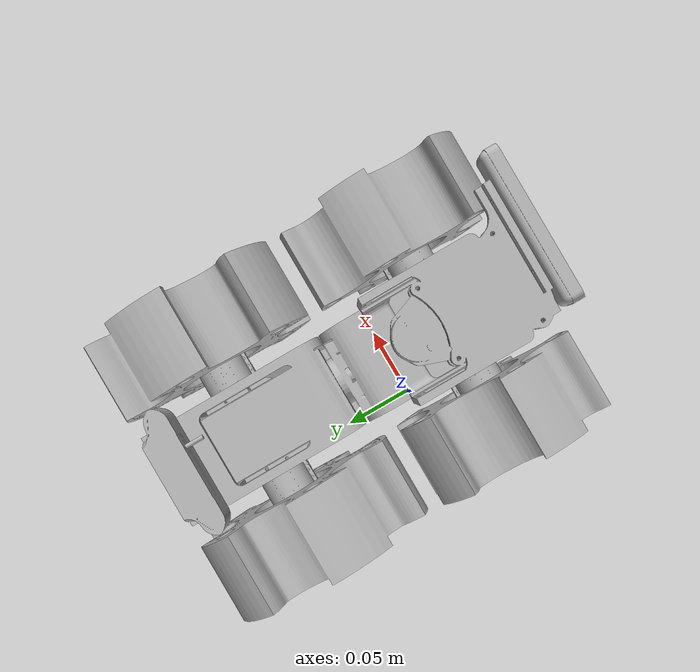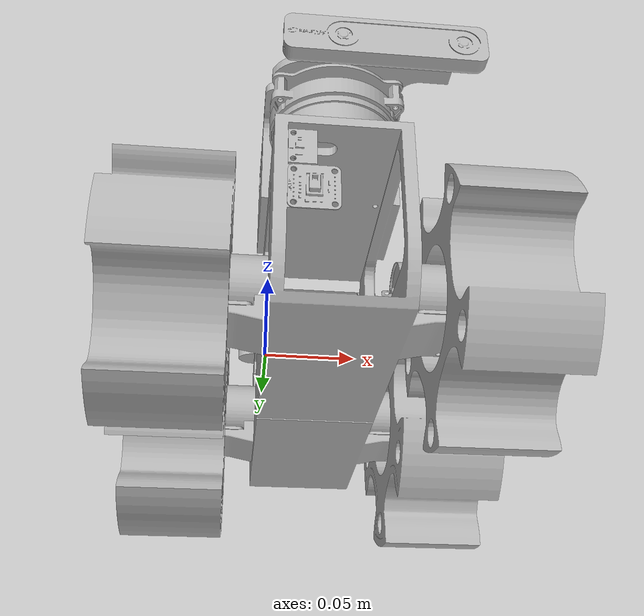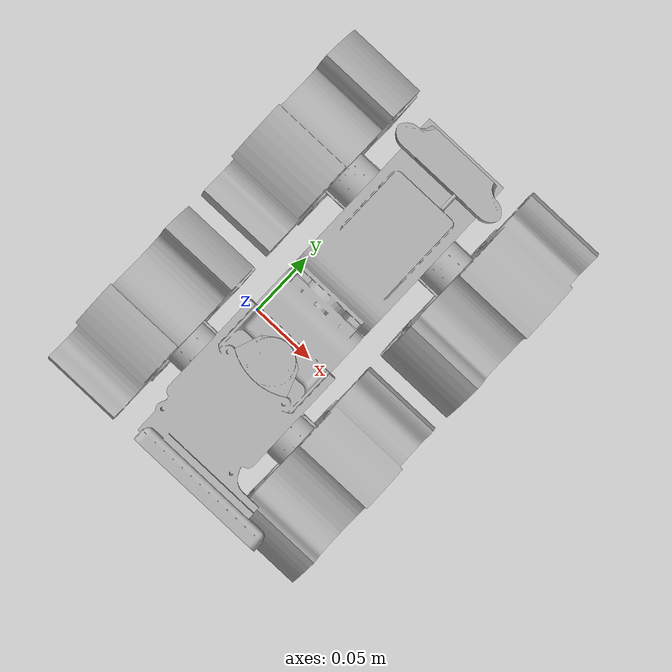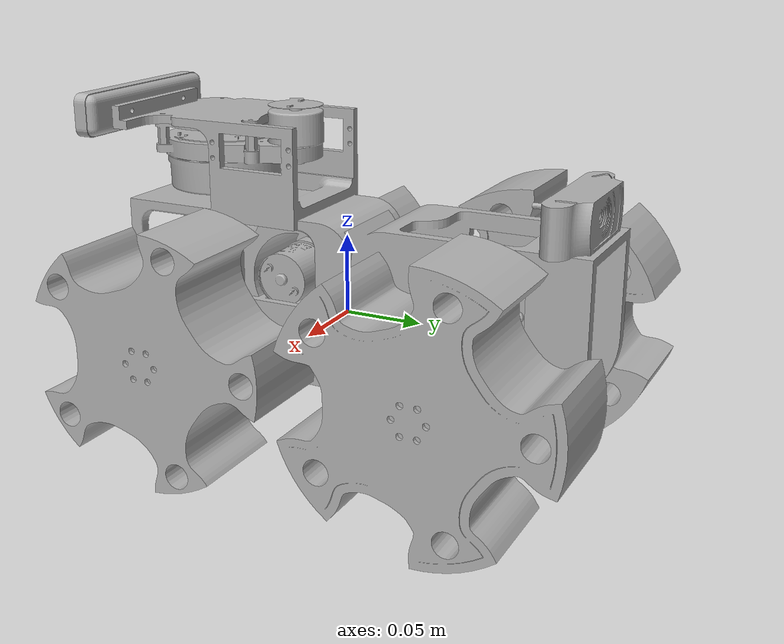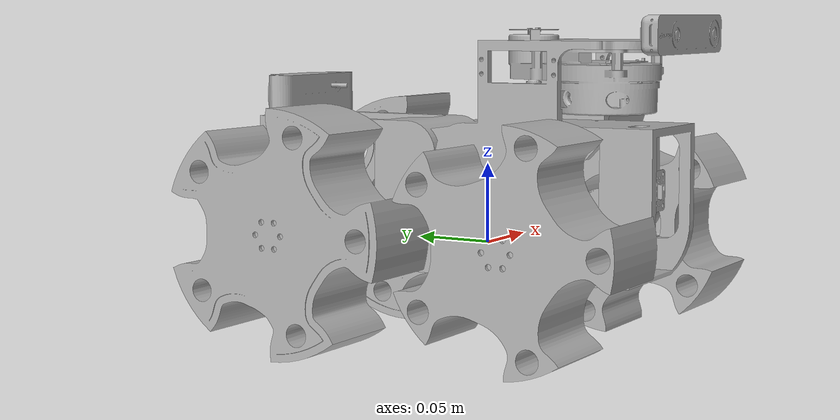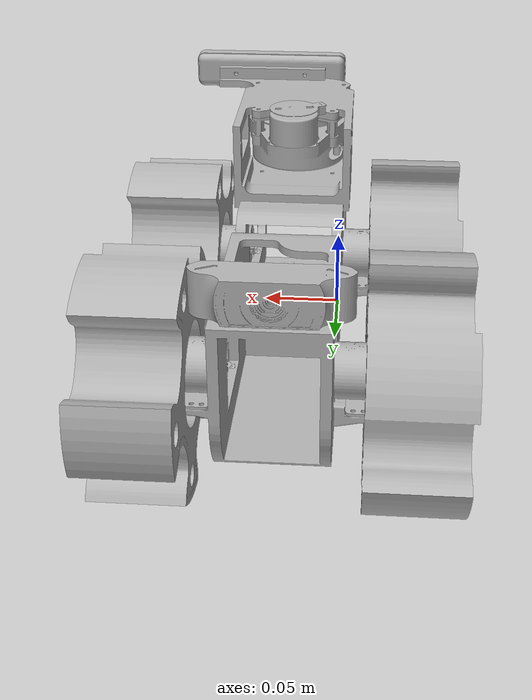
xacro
<?xml version="1.0" ?>
<robot name="redox_robot" xmlns:xacro="http://www.ros.org/wiki/xacro">

<xacro:include filename="$(find redox_robot_description)/urdf/materials.xacro" />
<xacro:include filename="$(find redox_robot_description)/urdf/redox_robot.trans" />
<xacro:include filename="$(find redox_robot_description)/urdf/redox_robot.gazebo" />
<link name="base_link">
  <inertial>
    <origin xyz="0.030018705409207293 0.02277308750672743 0.03005279524109006" rpy="0 0 0"/>
    <mass value="3.8831887887628076"/>
    <inertia ixx="0.032397" iyy="0.011887" izz="0.02869" ixy="-0.000377" iyz="0.003469" ixz="-1e-05"/>
  </inertial>
  <visual>
    <origin xyz="0 0 0" rpy="0 0 0"/>
    <geometry>
      <mesh filename="package://redox_robot_description/meshes/base_link.stl" scale="0.001 0.001 0.001"/>
    </geometry>
    <material name="silver"/>
  </visual>
  <collision>
    <origin xyz="0 0 0" rpy="0 0 0"/>
    <geometry>
      <mesh filename="package://redox_robot_description/meshes/base_link.stl" scale="0.001 0.001 0.001"/>
    </geometry>
  </collision>
</link>

<link name="wheel_3">
  <inertial>
    <origin xyz="0.02729659083369923 -0.0003579998502422632 -0.00014058126175340354" rpy="0 0 0"/>
    <mass value="4.750258601717646"/>
    <inertia ixx="0.014935" iyy="0.009074" izz="0.009066" ixy="2e-06" iyz="4e-06" ixz="1e-06"/>
  </inertial>
  <visual>
    <origin xyz="0.080654 -0.11181 -0.006293" rpy="0 0 0"/>
    <geometry>
      <mesh filename="package://redox_robot_description/meshes/wheel_3.stl" scale="0.001 0.001 0.001"/>
    </geometry>
    <material name="silver"/>
  </visual>
  <collision>
    <origin xyz="0.080654 -0.11181 -0.006293" rpy="0 0 0"/>
    <geometry>
      <mesh filename="package://redox_robot_description/meshes/wheel_3.stl" scale="0.001 0.001 0.001"/>
    </geometry>
  </collision>
</link>

<link name="wheel_2">
  <inertial>
    <origin xyz="-0.027296318412980913 0.0003572313203910604 -0.00014058126175261598" rpy="0 0 0"/>
    <mass value="4.750258601717646"/>
    <inertia ixx="0.014935" iyy="0.009074" izz="0.009066" ixy="2e-06" iyz="-4e-06" ixz="-1e-06"/>
  </inertial>
  <visual>
    <origin xyz="-0.144216 -0.111396 -0.006293" rpy="0 0 0"/>
    <geometry>
      <mesh filename="package://redox_robot_description/meshes/wheel_2.stl" scale="0.001 0.001 0.001"/>
    </geometry>
    <material name="silver"/>
  </visual>
  <collision>
    <origin xyz="-0.144216 -0.111396 -0.006293" rpy="0 0 0"/>
    <geometry>
      <mesh filename="package://redox_robot_description/meshes/wheel_2.stl" scale="0.001 0.001 0.001"/>
    </geometry>
  </collision>
</link>

<link name="wheel_4">
  <inertial>
    <origin xyz="0.027296590833699196 -0.00035799985024231873 -0.00014058126175339226" rpy="0 0 0"/>
    <mass value="4.750258601717646"/>
    <inertia ixx="0.014935" iyy="0.009074" izz="0.009066" ixy="2e-06" iyz="4e-06" ixz="1e-06"/>
  </inertial>
  <visual>
    <origin xyz="0.080654 0.04959 -0.006293" rpy="0 0 0"/>
    <geometry>
      <mesh filename="package://redox_robot_description/meshes/wheel_4.stl" scale="0.001 0.001 0.001"/>
    </geometry>
    <material name="silver"/>
  </visual>
  <collision>
    <origin xyz="0.080654 0.04959 -0.006293" rpy="0 0 0"/>
    <geometry>
      <mesh filename="package://redox_robot_description/meshes/wheel_4.stl" scale="0.001 0.001 0.001"/>
    </geometry>
  </collision>
</link>

<link name="wheel_1">
  <inertial>
    <origin xyz="-0.027296318412980844 0.0003572313203910882 -0.0001405812617526125" rpy="0 0 0"/>
    <mass value="4.750258601717646"/>
    <inertia ixx="0.014935" iyy="0.009074" izz="0.009066" ixy="2e-06" iyz="-4e-06" ixz="-1e-06"/>
  </inertial>
  <visual>
    <origin xyz="-0.144216 0.050004 -0.006293" rpy="0 0 0"/>
    <geometry>
      <mesh filename="package://redox_robot_description/meshes/wheel_1.stl" scale="0.001 0.001 0.001"/>
    </geometry>
    <material name="silver"/>
  </visual>
  <collision>
    <origin xyz="-0.144216 0.050004 -0.006293" rpy="0 0 0"/>
    <geometry>
      <mesh filename="package://redox_robot_description/meshes/wheel_1.stl" scale="0.001 0.001 0.001"/>
    </geometry>
  </collision>
</link>

<link name="gas_sensor_1">
  <inertial>
    <origin xyz="0.004746672182731395 -0.0008000921306509645 -0.007921901743374184" rpy="0 0 0"/>
    <mass value="0.003460388744762866"/>
    <inertia ixx="0.0" iyy="0.0" izz="0.0" ixy="-0.0" iyz="-0.0" ixz="-0.0"/>
  </inertial>
  <visual>
    <origin xyz="-0.006734 0.107777 -0.067433" rpy="0 0 0"/>
    <geometry>
      <mesh filename="package://redox_robot_description/meshes/gas_sensor_1.stl" scale="0.001 0.001 0.001"/>
    </geometry>
    <material name="silver"/>
  </visual>
  <collision>
    <origin xyz="-0.006734 0.107777 -0.067433" rpy="0 0 0"/>
    <geometry>
      <mesh filename="package://redox_robot_description/meshes/gas_sensor_1.stl" scale="0.001 0.001 0.001"/>
    </geometry>
  </collision>
</link>

<link name="base_scan_1">
  <inertial>
    <origin xyz="-0.000781 0.088274 -0.123077" rpy="0 0 0"/>
    <mass value="0.0"/>
    <inertia ixx="0.0" iyy="0.0" izz="0.0" ixy="0.0" iyz="0.0" ixz="0.0"/>
  </inertial>
  <visual>
    <origin xyz="-0.000781 0.088274 -0.123077" rpy="0 0 0"/>
    <geometry>
      <mesh filename="package://redox_robot_description/meshes/base_scan_1.stl" scale="0.001 0.001 0.001"/>
    </geometry>
    <material name="silver"/>
  </visual>
  <collision>
    <origin xyz="-0.000781 0.088274 -0.123077" rpy="0 0 0"/>
    <geometry>
      <mesh filename="package://redox_robot_description/meshes/base_scan_1.stl" scale="0.001 0.001 0.001"/>
    </geometry>
  </collision>

</link>

<link name="realsense_t265_1">
  <inertial>
    <origin xyz="-0.024754295060534712 -0.006117361074135616 -1.7589246570359762e-07" rpy="0 0 0"/>
    <mass value="0.22482888211310204"/>
    <inertia ixx="1.3e-05" iyy="0.000224" izz="0.000216" ixy="0.0" iyz="-0.0" ixz="0.0"/>
  </inertial>
  <visual>
    <origin xyz="-0.079663 0.101969 -0.131791" rpy="0 0 0"/>
    <geometry>
      <mesh filename="package://redox_robot_description/meshes/realsense_t265_1.stl" scale="0.001 0.001 0.001"/>
    </geometry>
    <material name="silver"/>
  </visual>
  <collision>
    <origin xyz="-0.079663 0.101969 -0.131791" rpy="0 0 0"/>
    <geometry>
      <mesh filename="package://redox_robot_description/meshes/realsense_t265_1.stl" scale="0.001 0.001 0.001"/>
    </geometry>
  </collision>
</link>

<link name="hub_4">
  <inertial>
    <origin xyz="0.003113509900325759 -9.136762218298067e-05 -0.00015428718992915869" rpy="0 0 0"/>
    <mass value="0.02001967132782171"/>
    <inertia ixx="2e-06" iyy="1e-06" izz="1e-06" ixy="0.0" iyz="0.0" ixz="0.0"/>
  </inertial>
  <visual>
    <origin xyz="0.080654 0.04959 -0.006293" rpy="0 0 0"/>
    <geometry>
      <mesh filename="package://redox_robot_description/meshes/hub_4.stl" scale="0.001 0.001 0.001"/>
    </geometry>
    <material name="silver"/>
  </visual>
  <collision>
    <origin xyz="0.080654 0.04959 -0.006293" rpy="0 0 0"/>
    <geometry>
      <mesh filename="package://redox_robot_description/meshes/hub_4.stl" scale="0.001 0.001 0.001"/>
    </geometry>
  </collision>
</link>

<link name="hub_1">
  <inertial>
    <origin xyz="-0.003113237479607567 9.059909233208319e-05 -0.00015428718992845179" rpy="0 0 0"/>
    <mass value="0.02001967132782171"/>
    <inertia ixx="2e-06" iyy="1e-06" izz="1e-06" ixy="0.0" iyz="-0.0" ixz="-0.0"/>
  </inertial>
  <visual>
    <origin xyz="-0.144216 0.050004 -0.006293" rpy="0 0 0"/>
    <geometry>
      <mesh filename="package://redox_robot_description/meshes/hub_1.stl" scale="0.001 0.001 0.001"/>
    </geometry>
    <material name="silver"/>
  </visual>
  <collision>
    <origin xyz="-0.144216 0.050004 -0.006293" rpy="0 0 0"/>
    <geometry>
      <mesh filename="package://redox_robot_description/meshes/hub_1.stl" scale="0.001 0.001 0.001"/>
    </geometry>
  </collision>
</link>

<link name="hub_2">
  <inertial>
    <origin xyz="-0.00311323747960765 9.059909233206931e-05 -0.00015428718992844398" rpy="0 0 0"/>
    <mass value="0.02001967132782171"/>
    <inertia ixx="2e-06" iyy="1e-06" izz="1e-06" ixy="0.0" iyz="-0.0" ixz="-0.0"/>
  </inertial>
  <visual>
    <origin xyz="-0.144216 -0.111396 -0.006293" rpy="0 0 0"/>
    <geometry>
      <mesh filename="package://redox_robot_description/meshes/hub_2.stl" scale="0.001 0.001 0.001"/>
    </geometry>
    <material name="silver"/>
  </visual>
  <collision>
    <origin xyz="-0.144216 -0.111396 -0.006293" rpy="0 0 0"/>
    <geometry>
      <mesh filename="package://redox_robot_description/meshes/hub_2.stl" scale="0.001 0.001 0.001"/>
    </geometry>
  </collision>
</link>

<link name="hub_3">
  <inertial>
    <origin xyz="0.0031135099003257866 -9.13676221830223e-05 -0.00015428718992917343" rpy="0 0 0"/>
    <mass value="0.02001967132782171"/>
    <inertia ixx="2e-06" iyy="1e-06" izz="1e-06" ixy="0.0" iyz="0.0" ixz="0.0"/>
  </inertial>
  <visual>
    <origin xyz="0.080654 -0.11181 -0.006293" rpy="0 0 0"/>
    <geometry>
      <mesh filename="package://redox_robot_description/meshes/hub_3.stl" scale="0.001 0.001 0.001"/>
    </geometry>
    <material name="silver"/>
  </visual>
  <collision>
    <origin xyz="0.080654 -0.11181 -0.006293" rpy="0 0 0"/>
    <geometry>
      <mesh filename="package://redox_robot_description/meshes/hub_3.stl" scale="0.001 0.001 0.001"/>
    </geometry>
  </collision>
</link>

<link name="dcmotor_4">
  <inertial>
    <origin xyz="0.02690834299078937 0.007749476584377274 -0.013589835198918437" rpy="0 0 0"/>
    <mass value="0.4471801539290962"/>
    <inertia ixx="7.1e-05" iyy="0.000161" izz="0.00016" ixy="0.0" iyz="0.0" ixz="-2e-06"/>
  </inertial>
  <visual>
    <origin xyz="0.058654 0.05734 -0.026717" rpy="0 0 0"/>
    <geometry>
      <mesh filename="package://redox_robot_description/meshes/dcmotor_4.stl" scale="0.001 0.001 0.001"/>
    </geometry>
    <material name="silver"/>
  </visual>
  <collision>
    <origin xyz="0.058654 0.05734 -0.026717" rpy="0 0 0"/>
    <geometry>
      <mesh filename="package://redox_robot_description/meshes/dcmotor_4.stl" scale="0.001 0.001 0.001"/>
    </geometry>
  </collision>
</link>

<link name="dcmotor_1">
  <inertial>
    <origin xyz="-0.02690807057007101 0.007749754885771787 -0.013589835198917991" rpy="0 0 0"/>
    <mass value="0.4471801539290962"/>
    <inertia ixx="7.1e-05" iyy="0.000161" izz="0.00016" ixy="0.0" iyz="-0.0" ixz="2e-06"/>
  </inertial>
  <visual>
    <origin xyz="-0.122216 0.057754 -0.026717" rpy="0 0 0"/>
    <geometry>
      <mesh filename="package://redox_robot_description/meshes/dcmotor_1.stl" scale="0.001 0.001 0.001"/>
    </geometry>
    <material name="silver"/>
  </visual>
  <collision>
    <origin xyz="-0.122216 0.057754 -0.026717" rpy="0 0 0"/>
    <geometry>
      <mesh filename="package://redox_robot_description/meshes/dcmotor_1.stl" scale="0.001 0.001 0.001"/>
    </geometry>
  </collision>
</link>

<link name="dcmotor_2">
  <inertial>
    <origin xyz="-0.026908070570071024 0.007749754885771759 -0.01358983519891798" rpy="0 0 0"/>
    <mass value="0.4471801539290962"/>
    <inertia ixx="7.1e-05" iyy="0.000161" izz="0.00016" ixy="0.0" iyz="-0.0" ixz="2e-06"/>
  </inertial>
  <visual>
    <origin xyz="-0.122216 -0.103646 -0.026717" rpy="0 0 0"/>
    <geometry>
      <mesh filename="package://redox_robot_description/meshes/dcmotor_2.stl" scale="0.001 0.001 0.001"/>
    </geometry>
    <material name="silver"/>
  </visual>
  <collision>
    <origin xyz="-0.122216 -0.103646 -0.026717" rpy="0 0 0"/>
    <geometry>
      <mesh filename="package://redox_robot_description/meshes/dcmotor_2.stl" scale="0.001 0.001 0.001"/>
    </geometry>
  </collision>
</link>

<link name="dcmotor_3">
  <inertial>
    <origin xyz="0.026908342990789424 0.007749476584377177 -0.013589835198918434" rpy="0 0 0"/>
    <mass value="0.4471801539290962"/>
    <inertia ixx="7.1e-05" iyy="0.000161" izz="0.00016" ixy="0.0" iyz="0.0" ixz="-2e-06"/>
  </inertial>
  <visual>
    <origin xyz="0.058654 -0.10406 -0.026717" rpy="0 0 0"/>
    <geometry>
      <mesh filename="package://redox_robot_description/meshes/dcmotor_3.stl" scale="0.001 0.001 0.001"/>
    </geometry>
    <material name="silver"/>
  </visual>
  <collision>
    <origin xyz="0.058654 -0.10406 -0.026717" rpy="0 0 0"/>
    <geometry>
      <mesh filename="package://redox_robot_description/meshes/dcmotor_3.stl" scale="0.001 0.001 0.001"/>
    </geometry>
  </collision>
</link>

<link name="bracket_1">
  <inertial>
    <origin xyz="-0.002859767439332389 0.015615634272172767 0.006770355606271952" rpy="0 0 0"/>
    <mass value="0.04195982764049011"/>
    <inertia ixx="9e-06" iyy="1.6e-05" izz="1.7e-05" ixy="0.0" iyz="0.0" ixz="-4e-06"/>
  </inertial>
  <visual>
    <origin xyz="-0.109529 0.065621 0.007509" rpy="0 0 0"/>
    <geometry>
      <mesh filename="package://redox_robot_description/meshes/bracket_1.stl" scale="0.001 0.001 0.001"/>
    </geometry>
    <material name="silver"/>
  </visual>
  <collision>
    <origin xyz="-0.109529 0.065621 0.007509" rpy="0 0 0"/>
    <geometry>
      <mesh filename="package://redox_robot_description/meshes/bracket_1.stl" scale="0.001 0.001 0.001"/>
    </geometry>
  </collision>
</link>

<link name="bracket_2">
  <inertial>
    <origin xyz="-0.0028597674393324307 0.01561563427217276 0.006770355606271971" rpy="0 0 0"/>
    <mass value="0.04195982764049011"/>
    <inertia ixx="9e-06" iyy="1.6e-05" izz="1.7e-05" ixy="0.0" iyz="0.0" ixz="-4e-06"/>
  </inertial>
  <visual>
    <origin xyz="-0.109529 -0.095779 0.007509" rpy="0 0 0"/>
    <geometry>
      <mesh filename="package://redox_robot_description/meshes/bracket_2.stl" scale="0.001 0.001 0.001"/>
    </geometry>
    <material name="silver"/>
  </visual>
  <collision>
    <origin xyz="-0.109529 -0.095779 0.007509" rpy="0 0 0"/>
    <geometry>
      <mesh filename="package://redox_robot_description/meshes/bracket_2.stl" scale="0.001 0.001 0.001"/>
    </geometry>
  </collision>
</link>

<link name="bracket_4">
  <inertial>
    <origin xyz="0.002859039860050941 0.015626500151939553 0.006770355606271875" rpy="0 0 0"/>
    <mass value="0.04195982764049011"/>
    <inertia ixx="9e-06" iyy="1.6e-05" izz="1.7e-05" ixy="0.0" iyz="-0.0" ixz="4e-06"/>
  </inertial>
  <visual>
    <origin xyz="0.045966 0.065213 0.007509" rpy="0 0 0"/>
    <geometry>
      <mesh filename="package://redox_robot_description/meshes/bracket_4.stl" scale="0.001 0.001 0.001"/>
    </geometry>
    <material name="silver"/>
  </visual>
  <collision>
    <origin xyz="0.045966 0.065213 0.007509" rpy="0 0 0"/>
    <geometry>
      <mesh filename="package://redox_robot_description/meshes/bracket_4.stl" scale="0.001 0.001 0.001"/>
    </geometry>
  </collision>
</link>

<link name="bracket_3">
  <inertial>
    <origin xyz="0.002859039860050934 0.015626500151939504 0.006770355606271877" rpy="0 0 0"/>
    <mass value="0.04195982764049011"/>
    <inertia ixx="9e-06" iyy="1.6e-05" izz="1.7e-05" ixy="0.0" iyz="-0.0" ixz="4e-06"/>
  </inertial>
  <visual>
    <origin xyz="0.045966 -0.096187 0.007509" rpy="0 0 0"/>
    <geometry>
      <mesh filename="package://redox_robot_description/meshes/bracket_3.stl" scale="0.001 0.001 0.001"/>
    </geometry>
    <material name="silver"/>
  </visual>
  <collision>
    <origin xyz="0.045966 -0.096187 0.007509" rpy="0 0 0"/>
    <geometry>
      <mesh filename="package://redox_robot_description/meshes/bracket_3.stl" scale="0.001 0.001 0.001"/>
    </geometry>
  </collision>
</link>

<link name="back_camera_1">
  <inertial>
    <origin xyz="2.3451599559846936e-05 -0.0012721615487102378 0.013794968532879703" rpy="0 0 0"/>
    <mass value="0.3938340663114922"/>
    <inertia ixx="4.1e-05" iyy="0.000252" izz="0.000242" ixy="0.0" iyz="-0.0" ixz="-0.0"/>
  </inertial>
  <visual>
    <origin xyz="-0.031781 -0.159556 -0.075491" rpy="0 0 0"/>
    <geometry>
      <mesh filename="package://redox_robot_description/meshes/back_camera_1.stl" scale="0.001 0.001 0.001"/>
    </geometry>
    <material name="silver"/>
  </visual>
  <collision>
    <origin xyz="-0.031781 -0.159556 -0.075491" rpy="0 0 0"/>
    <geometry>
      <mesh filename="package://redox_robot_description/meshes/back_camera_1.stl" scale="0.001 0.001 0.001"/>
    </geometry>
  </collision>
</link>

<link name="thermal_camera_1">
  <inertial>
    <origin xyz="0.009852254547568662 -0.001102102803734406 -0.009785702572175273" rpy="0 0 0"/>
    <mass value="0.004996183093515437"/>
    <inertia ixx="0.0" iyy="0.0" izz="0.0" ixy="0.0" iyz="-0.0" ixz="-0.0"/>
  </inertial>
  <visual>
    <origin xyz="-0.007213 0.107777 -0.046041" rpy="0 0 0"/>
    <geometry>
      <mesh filename="package://redox_robot_description/meshes/thermal_camera_1.stl" scale="0.001 0.001 0.001"/>
    </geometry>
    <material name="silver"/>
  </visual>
  <collision>
    <origin xyz="-0.007213 0.107777 -0.046041" rpy="0 0 0"/>
    <geometry>
      <mesh filename="package://redox_robot_description/meshes/thermal_camera_1.stl" scale="0.001 0.001 0.001"/>
    </geometry>
  </collision>
</link>

<joint name="Rev1" type="continuous">
  <origin xyz="0.0 0.0 0.0" rpy="0 0 0"/>
  <parent link="hub_3"/>
  <child link="wheel_3"/>
  <axis xyz="1.0 -0.0 0.0"/>
</joint>

<joint name="Rev2" type="continuous">
  <origin xyz="0.0 0.0 0.0" rpy="0 0 0"/>
  <parent link="hub_2"/>
  <child link="wheel_2"/>
  <axis xyz="-1.0 -0.0 0.0"/>
</joint>

<joint name="Rev3" type="continuous">
  <origin xyz="0.0 0.0 0.0" rpy="0 0 0"/>
  <parent link="hub_4"/>
  <child link="wheel_4"/>
  <axis xyz="1.0 -0.0 0.0"/>
</joint>

<joint name="Rev4" type="continuous">
  <origin xyz="0.0 0.0 0.0" rpy="0 0 0"/>
  <parent link="hub_1"/>
  <child link="wheel_1"/>
  <axis xyz="-1.0 -0.0 0.0"/>
</joint>

<joint name="Rigid6" type="fixed">
  <origin xyz="0.006734 -0.107777 0.067433" rpy="0 0 0"/>
  <parent link="base_link"/>
  <child link="gas_sensor_1"/>
</joint>

<joint name="Rigid7" type="fixed">
  <origin xyz="0.000781 -0.088274 0.123077" rpy="0 0 0"/>
  <parent link="base_link"/>
  <child link="base_scan_1"/>
</joint>

<joint name="Rigid8" type="fixed">
  <origin xyz="0.079663 -0.101969 0.131791" rpy="0 0 0"/>
  <parent link="base_link"/>
  <child link="realsense_t265_1"/>
</joint>

<joint name="Rigid9" type="fixed">
  <origin xyz="-0.022 0.00775 -0.020424" rpy="0 0 0"/>
  <parent link="dcmotor_4"/>
  <child link="hub_4"/>
</joint>

<joint name="Rigid10" type="fixed">
  <origin xyz="0.022 0.00775 -0.020424" rpy="0 0 0"/>
  <parent link="dcmotor_1"/>
  <child link="hub_1"/>
</joint>

<joint name="Rigid11" type="fixed">
  <origin xyz="0.022 0.00775 -0.020424" rpy="0 0 0"/>
  <parent link="dcmotor_2"/>
  <child link="hub_2"/>
</joint>

<joint name="Rigid12" type="fixed">
  <origin xyz="-0.022 0.00775 -0.020424" rpy="0 0 0"/>
  <parent link="dcmotor_3"/>
  <child link="hub_3"/>
</joint>

<joint name="Rigid13" type="fixed">
  <origin xyz="-0.012688 0.007873 0.034226" rpy="0 0 0"/>
  <parent link="bracket_4"/>
  <child link="dcmotor_4"/>
</joint>

<joint name="Rigid14" type="fixed">
  <origin xyz="0.012687 0.007867 0.034226" rpy="0 0 0"/>
  <parent link="bracket_1"/>
  <child link="dcmotor_1"/>
</joint>

<joint name="Rigid15" type="fixed">
  <origin xyz="0.012687 0.007867 0.034226" rpy="0 0 0"/>
  <parent link="bracket_2"/>
  <child link="dcmotor_2"/>
</joint>

<joint name="Rigid16" type="fixed">
  <origin xyz="-0.012688 0.007873 0.034226" rpy="0 0 0"/>
  <parent link="bracket_3"/>
  <child link="dcmotor_3"/>
</joint>

<joint name="Rigid17" type="fixed">
  <origin xyz="0.109529 -0.065621 -0.007509" rpy="0 0 0"/>
  <parent link="base_link"/>
  <child link="bracket_1"/>
</joint>

<joint name="Rigid18" type="fixed">
  <origin xyz="0.109529 0.095779 -0.007509" rpy="0 0 0"/>
  <parent link="base_link"/>
  <child link="bracket_2"/>
</joint>

<joint name="Rigid19" type="fixed">
  <origin xyz="-0.045966 -0.065213 -0.007509" rpy="0 0 0"/>
  <parent link="base_link"/>
  <child link="bracket_4"/>
</joint>

<joint name="Rigid20" type="fixed">
  <origin xyz="-0.045966 0.096187 -0.007509" rpy="0 0 0"/>
  <parent link="base_link"/>
  <child link="bracket_3"/>
</joint>

<joint name="Rigid21" type="fixed">
  <origin xyz="0.031781 0.159556 0.075491" rpy="0 0 0"/>
  <parent link="base_link"/>
  <child link="back_camera_1"/>
</joint>

<joint name="Rigid22" type="fixed">
  <origin xyz="0.007213 -0.107777 0.046041" rpy="0 0 0"/>
  <parent link="base_link"/>
  <child link="thermal_camera_1"/>
</joint>

</robot>

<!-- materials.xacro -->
<robot name="redox_robot" xmlns:xacro="http://www.ros.org/wiki/xacro" >

<material name="silver">
  <color rgba="0.700 0.700 0.700 1.000"/>
</material>

</robot>

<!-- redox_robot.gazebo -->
<robot name="redox_robot" xmlns:xacro="http://www.ros.org/wiki/xacro" >

<xacro:property name="body_color" value="Gazebo/Silver" />

<gazebo>
  <plugin name="control" filename="libgazebo_ros_control.so"/>
</gazebo>
<gazebo reference="base_link">
  <material>${body_color}</material>
  <mu1>0.2</mu1>
  <mu2>0.2</mu2>
  <selfCollide>true</selfCollide>
  <gravity>true</gravity>
</gazebo>

<gazebo reference="wheel_3">
  <material>${body_color}</material>
  <mu1>0.2</mu1>
  <mu2>0.2</mu2>
  <selfCollide>true</selfCollide>
</gazebo>

<gazebo reference="wheel_2">
  <material>${body_color}</material>
  <mu1>0.2</mu1>
  <mu2>0.2</mu2>
  <selfCollide>true</selfCollide>
</gazebo>

<gazebo reference="wheel_4">
  <material>${body_color}</material>
  <mu1>0.2</mu1>
  <mu2>0.2</mu2>
  <selfCollide>true</selfCollide>
</gazebo>

<gazebo reference="wheel_1">
  <material>${body_color}</material>
  <mu1>0.2</mu1>
  <mu2>0.2</mu2>
  <selfCollide>true</selfCollide>
</gazebo>

<gazebo reference="gas_sensor_1">
  <material>${body_color}</material>
  <mu1>0.2</mu1>
  <mu2>0.2</mu2>
  <selfCollide>true</selfCollide>
</gazebo>

<gazebo reference="base_scan_1">
  <material>${body_color}</material>
  <mu1>0.2</mu1>
  <mu2>0.2</mu2>
  <selfCollide>true</selfCollide>
</gazebo>

<gazebo reference="realsense_t265_1">
  <material>${body_color}</material>
  <mu1>0.2</mu1>
  <mu2>0.2</mu2>
  <selfCollide>true</selfCollide>
</gazebo>

<gazebo reference="hub_4">
  <material>${body_color}</material>
  <mu1>0.2</mu1>
  <mu2>0.2</mu2>
  <selfCollide>true</selfCollide>
</gazebo>

<gazebo reference="hub_1">
  <material>${body_color}</material>
  <mu1>0.2</mu1>
  <mu2>0.2</mu2>
  <selfCollide>true</selfCollide>
</gazebo>

<gazebo reference="hub_2">
  <material>${body_color}</material>
  <mu1>0.2</mu1>
  <mu2>0.2</mu2>
  <selfCollide>true</selfCollide>
</gazebo>

<gazebo reference="hub_3">
  <material>${body_color}</material>
  <mu1>0.2</mu1>
  <mu2>0.2</mu2>
  <selfCollide>true</selfCollide>
</gazebo>

<gazebo reference="dcmotor_4">
  <material>${body_color}</material>
  <mu1>0.2</mu1>
  <mu2>0.2</mu2>
  <selfCollide>true</selfCollide>
</gazebo>

<gazebo reference="dcmotor_1">
  <material>${body_color}</material>
  <mu1>0.2</mu1>
  <mu2>0.2</mu2>
  <selfCollide>true</selfCollide>
</gazebo>

<gazebo reference="dcmotor_2">
  <material>${body_color}</material>
  <mu1>0.2</mu1>
  <mu2>0.2</mu2>
  <selfCollide>true</selfCollide>
</gazebo>

<gazebo reference="dcmotor_3">
  <material>${body_color}</material>
  <mu1>0.2</mu1>
  <mu2>0.2</mu2>
  <selfCollide>true</selfCollide>
</gazebo>

<gazebo reference="bracket_1">
  <material>${body_color}</material>
  <mu1>0.2</mu1>
  <mu2>0.2</mu2>
  <selfCollide>true</selfCollide>
</gazebo>

<gazebo reference="bracket_2">
  <material>${body_color}</material>
  <mu1>0.2</mu1>
  <mu2>0.2</mu2>
  <selfCollide>true</selfCollide>
</gazebo>

<gazebo reference="bracket_4">
  <material>${body_color}</material>
  <mu1>0.2</mu1>
  <mu2>0.2</mu2>
  <selfCollide>true</selfCollide>
</gazebo>

<gazebo reference="bracket_3">
  <material>${body_color}</material>
  <mu1>0.2</mu1>
  <mu2>0.2</mu2>
  <selfCollide>true</selfCollide>
</gazebo>

<gazebo reference="back_camera_1">
  <material>${body_color}</material>
  <mu1>0.2</mu1>
  <mu2>0.2</mu2>
  <selfCollide>true</selfCollide>
</gazebo>

<gazebo reference="thermal_camera_1">
  <material>${body_color}</material>
  <mu1>0.2</mu1>
  <mu2>0.2</mu2>
  <selfCollide>true</selfCollide>
</gazebo>

</robot>
